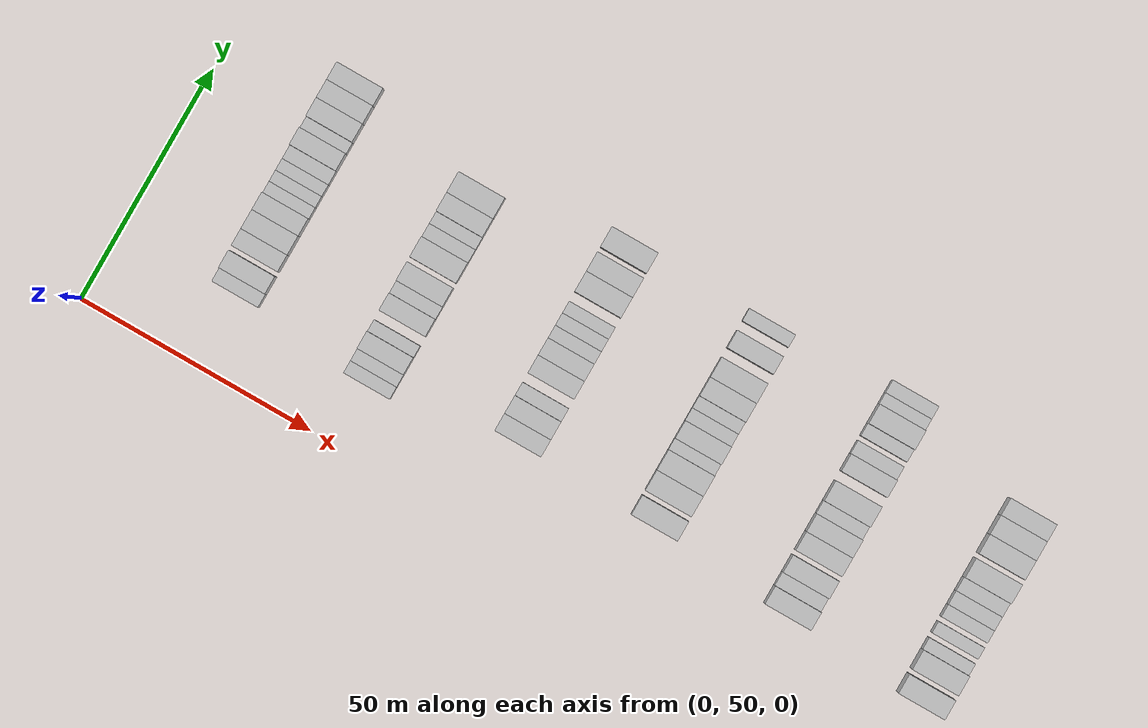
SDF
<sdf version="1.6">
 <world name="default">
  <model name="building_131">
   <static>1</static>
   <pose>25.0000 66.7313 0 0.000000 0.000000 0.000000</pose>
   <link name="link">
    <pose>0 0 3.00 0 0 0</pose>
    <collision name="collision"><geometry><box><size>10.0000 2.8714 6.0000</size></box></geometry></collision>
    <visual name="visual">
     <cast_shadows>0</cast_shadows>
     <geometry><box><size>10.0000 2.8714 6.0000</size></box></geometry>
     <material>
      <script>
       <uri>model://HANNAS_wall/materials/scripts</uri>
       <uri>model://HANNAS_wall/materials/textures</uri>
       <name>vrc/HANNAS_wall</name>
      </script>
     </material>
    </visual>
   </link>
  </model>
  <model name="building_132">
   <static>1</static>
   <pose>25.0000 70.0591 0 0.000000 0.000000 0.000000</pose>
   <link name="link">
    <pose>0 0 4.50 0 0 0</pose>
    <collision name="collision"><geometry><box><size>10.0000 3.7842 9.0000</size></box></geometry></collision>
    <visual name="visual">
     <cast_shadows>0</cast_shadows>
     <geometry><box><size>10.0000 3.7842 9.0000</size></box></geometry>
     <material>
      <script>
       <uri>model://HANNAS_wall/materials/scripts</uri>
       <uri>model://HANNAS_wall/materials/textures</uri>
       <name>vrc/HANNAS_wall</name>
      </script>
     </material>
    </visual>
   </link>
  </model>
  <model name="building_133">
   <static>1</static>
   <pose>25.0000 74.7587 0 0.000000 0.000000 0.000000</pose>
   <link name="link">
    <pose>0 0 4.50 0 0 0</pose>
    <collision name="collision"><geometry><box><size>10.0000 3.6150 9.0000</size></box></geometry></collision>
    <visual name="visual">
     <cast_shadows>0</cast_shadows>
     <geometry><box><size>10.0000 3.6150 9.0000</size></box></geometry>
     <material>
      <script>
       <uri>model://HANNAS_wall/materials/scripts</uri>
       <uri>model://HANNAS_wall/materials/textures</uri>
       <name>vrc/HANNAS_wall</name>
      </script>
     </material>
    </visual>
   </link>
  </model>
  <model name="building_134">
   <static>1</static>
   <pose>25.0000 78.6257 0 0.000000 0.000000 0.000000</pose>
   <link name="link">
    <pose>0 0 4.50 0 0 0</pose>
    <collision name="collision"><geometry><box><size>10.0000 4.1189 9.0000</size></box></geometry></collision>
    <visual name="visual">
     <cast_shadows>0</cast_shadows>
     <geometry><box><size>10.0000 4.1189 9.0000</size></box></geometry>
     <material>
      <script>
       <uri>model://HANNAS_wall/materials/scripts</uri>
       <uri>model://HANNAS_wall/materials/textures</uri>
       <name>vrc/HANNAS_wall</name>
      </script>
     </material>
    </visual>
   </link>
  </model>
  <model name="building_135">
   <static>1</static>
   <pose>25.0000 82.5671 0 0.000000 0.000000 0.000000</pose>
   <link name="link">
    <pose>0 0 4.50 0 0 0</pose>
    <collision name="collision"><geometry><box><size>10.0000 3.7638 9.0000</size></box></geometry></collision>
    <visual name="visual">
     <cast_shadows>0</cast_shadows>
     <geometry><box><size>10.0000 3.7638 9.0000</size></box></geometry>
     <material>
      <script>
       <uri>model://HANNAS_wall/materials/scripts</uri>
       <uri>model://HANNAS_wall/materials/textures</uri>
       <name>vrc/HANNAS_wall</name>
      </script>
     </material>
    </visual>
   </link>
  </model>
  <model name="building_136">
   <static>1</static>
   <pose>25.0000 85.6708 0 0.000000 0.000000 0.000000</pose>
   <link name="link">
    <pose>0 0 3.00 0 0 0</pose>
    <collision name="collision"><geometry><box><size>10.0000 2.4436 6.0000</size></box></geometry></collision>
    <visual name="visual">
     <cast_shadows>0</cast_shadows>
     <geometry><box><size>10.0000 2.4436 6.0000</size></box></geometry>
     <material>
      <script>
       <uri>model://HANNAS_wall/materials/scripts</uri>
       <uri>model://HANNAS_wall/materials/textures</uri>
       <name>vrc/HANNAS_wall</name>
      </script>
     </material>
    </visual>
   </link>
  </model>
  <model name="building_137">
   <static>1</static>
   <pose>25.0000 88.1018 0 0.000000 0.000000 0.000000</pose>
   <link name="link">
    <pose>0 0 3.00 0 0 0</pose>
    <collision name="collision"><geometry><box><size>10.0000 2.4183 6.0000</size></box></geometry></collision>
    <visual name="visual">
     <cast_shadows>0</cast_shadows>
     <geometry><box><size>10.0000 2.4183 6.0000</size></box></geometry>
     <material>
      <script>
       <uri>model://HANNAS_wall/materials/scripts</uri>
       <uri>model://HANNAS_wall/materials/textures</uri>
       <name>vrc/HANNAS_wall</name>
      </script>
     </material>
    </visual>
   </link>
  </model>
  <model name="building_138">
   <static>1</static>
   <pose>25.0000 90.5647 0 0.000000 0.000000 0.000000</pose>
   <link name="link">
    <pose>0 0 3.00 0 0 0</pose>
    <collision name="collision"><geometry><box><size>10.0000 2.5077 6.0000</size></box></geometry></collision>
    <visual name="visual">
     <cast_shadows>0</cast_shadows>
     <geometry><box><size>10.0000 2.5077 6.0000</size></box></geometry>
     <material>
      <script>
       <uri>model://HANNAS_wall/materials/scripts</uri>
       <uri>model://HANNAS_wall/materials/textures</uri>
       <name>vrc/HANNAS_wall</name>
      </script>
     </material>
    </visual>
   </link>
  </model>
  <model name="building_139">
   <static>1</static>
   <pose>25.0000 93.2722 0 0.000000 0.000000 0.000000</pose>
   <link name="link">
    <pose>0 0 3.00 0 0 0</pose>
    <collision name="collision"><geometry><box><size>10.0000 2.9072 6.0000</size></box></geometry></collision>
    <visual name="visual">
     <cast_shadows>0</cast_shadows>
     <geometry><box><size>10.0000 2.9072 6.0000</size></box></geometry>
     <material>
      <script>
       <uri>model://HANNAS_wall/materials/scripts</uri>
       <uri>model://HANNAS_wall/materials/textures</uri>
       <name>vrc/HANNAS_wall</name>
      </script>
     </material>
    </visual>
   </link>
  </model>
  <model name="building_140">
   <static>1</static>
   <pose>25.0000 96.5996 0 0.000000 0.000000 0.000000</pose>
   <link name="link">
    <pose>0 0 4.50 0 0 0</pose>
    <collision name="collision"><geometry><box><size>10.0000 3.7475 9.0000</size></box></geometry></collision>
    <visual name="visual">
     <cast_shadows>0</cast_shadows>
     <geometry><box><size>10.0000 3.7475 9.0000</size></box></geometry>
     <material>
      <script>
       <uri>model://HANNAS_wall/materials/scripts</uri>
       <uri>model://HANNAS_wall/materials/textures</uri>
       <name>vrc/HANNAS_wall</name>
      </script>
     </material>
    </visual>
   </link>
  </model>
  <model name="building_141">
   <static>1</static>
   <pose>25.0000 99.6861 0 0.000000 0.000000 0.000000</pose>
   <link name="link">
    <pose>0 0 3.00 0 0 0</pose>
    <collision name="collision"><geometry><box><size>10.0000 2.4255 6.0000</size></box></geometry></collision>
    <visual name="visual">
     <cast_shadows>0</cast_shadows>
     <geometry><box><size>10.0000 2.4255 6.0000</size></box></geometry>
     <material>
      <script>
       <uri>model://HANNAS_wall/materials/scripts</uri>
       <uri>model://HANNAS_wall/materials/textures</uri>
       <name>vrc/HANNAS_wall</name>
      </script>
     </material>
    </visual>
   </link>
  </model>
  <model name="building_142">
   <static>1</static>
   <pose>25.0000 102.8888 0 0.000000 0.000000 0.000000</pose>
   <link name="link">
    <pose>0 0 4.50 0 0 0</pose>
    <collision name="collision"><geometry><box><size>10.0000 3.9800 9.0000</size></box></geometry></collision>
    <visual name="visual">
     <cast_shadows>0</cast_shadows>
     <geometry><box><size>10.0000 3.9800 9.0000</size></box></geometry>
     <material>
      <script>
       <uri>model://HANNAS_wall/materials/scripts</uri>
       <uri>model://HANNAS_wall/materials/textures</uri>
       <name>vrc/HANNAS_wall</name>
      </script>
     </material>
    </visual>
   </link>
  </model>
  <model name="building_143">
   <static>1</static>
   <pose>25.0000 106.8172 0 0.000000 0.000000 0.000000</pose>
   <link name="link">
    <pose>0 0 4.50 0 0 0</pose>
    <collision name="collision"><geometry><box><size>10.0000 3.8768 9.0000</size></box></geometry></collision>
    <visual name="visual">
     <cast_shadows>0</cast_shadows>
     <geometry><box><size>10.0000 3.8768 9.0000</size></box></geometry>
     <material>
      <script>
       <uri>model://HANNAS_wall/materials/scripts</uri>
       <uri>model://HANNAS_wall/materials/textures</uri>
       <name>vrc/HANNAS_wall</name>
      </script>
     </material>
    </visual>
   </link>
  </model>
  <model name="building_144">
   <static>1</static>
   <pose>25.0000 110.6579 0 0.000000 0.000000 0.000000</pose>
   <link name="link">
    <pose>0 0 4.50 0 0 0</pose>
    <collision name="collision"><geometry><box><size>10.0000 3.8047 9.0000</size></box></geometry></collision>
    <visual name="visual">
     <cast_shadows>0</cast_shadows>
     <geometry><box><size>10.0000 3.8047 9.0000</size></box></geometry>
     <material>
      <script>
       <uri>model://HANNAS_wall/materials/scripts</uri>
       <uri>model://HANNAS_wall/materials/textures</uri>
       <name>vrc/HANNAS_wall</name>
      </script>
     </material>
    </visual>
   </link>
  </model>
  <model name="building_352">
   <static>1</static>
   <pose>55.0000 64.0035 0 0.000000 0.000000 0.000000</pose>
   <link name="link">
    <pose>0 0 3.00 0 0 0</pose>
    <collision name="collision"><geometry><box><size>10.0000 2.6299 6.0000</size></box></geometry></collision>
    <visual name="visual">
     <cast_shadows>0</cast_shadows>
     <geometry><box><size>10.0000 2.6299 6.0000</size></box></geometry>
     <material>
      <script>
       <uri>model://HANNAS_wall/materials/scripts</uri>
       <uri>model://HANNAS_wall/materials/textures</uri>
       <name>vrc/HANNAS_wall</name>
      </script>
     </material>
    </visual>
   </link>
  </model>
  <model name="building_353">
   <static>1</static>
   <pose>55.0000 66.6451 0 0.000000 0.000000 0.000000</pose>
   <link name="link">
    <pose>0 0 3.00 0 0 0</pose>
    <collision name="collision"><geometry><box><size>10.0000 2.6533 6.0000</size></box></geometry></collision>
    <visual name="visual">
     <cast_shadows>0</cast_shadows>
     <geometry><box><size>10.0000 2.6533 6.0000</size></box></geometry>
     <material>
      <script>
       <uri>model://HANNAS_wall/materials/scripts</uri>
       <uri>model://HANNAS_wall/materials/textures</uri>
       <name>vrc/HANNAS_wall</name>
      </script>
     </material>
    </visual>
   </link>
  </model>
  <model name="building_354">
   <static>1</static>
   <pose>55.0000 69.8385 0 0.000000 0.000000 0.000000</pose>
   <link name="link">
    <pose>0 0 4.50 0 0 0</pose>
    <collision name="collision"><geometry><box><size>10.0000 3.7335 9.0000</size></box></geometry></collision>
    <visual name="visual">
     <cast_shadows>0</cast_shadows>
     <geometry><box><size>10.0000 3.7335 9.0000</size></box></geometry>
     <material>
      <script>
       <uri>model://HANNAS_wall/materials/scripts</uri>
       <uri>model://HANNAS_wall/materials/textures</uri>
       <name>vrc/HANNAS_wall</name>
      </script>
     </material>
    </visual>
   </link>
  </model>
  <model name="building_355">
   <static>1</static>
   <pose>55.0000 72.9557 0 0.000000 0.000000 0.000000</pose>
   <link name="link">
    <pose>0 0 3.00 0 0 0</pose>
    <collision name="collision"><geometry><box><size>10.0000 2.5010 6.0000</size></box></geometry></collision>
    <visual name="visual">
     <cast_shadows>0</cast_shadows>
     <geometry><box><size>10.0000 2.5010 6.0000</size></box></geometry>
     <material>
      <script>
       <uri>model://HANNAS_wall/materials/scripts</uri>
       <uri>model://HANNAS_wall/materials/textures</uri>
       <name>vrc/HANNAS_wall</name>
      </script>
     </material>
    </visual>
   </link>
  </model>
  <model name="building_356">
   <static>1</static>
   <pose>55.0000 78.0812 0 0.000000 0.000000 0.000000</pose>
   <link name="link">
    <pose>0 0 4.50 0 0 0</pose>
    <collision name="collision"><geometry><box><size>10.0000 3.7501 9.0000</size></box></geometry></collision>
    <visual name="visual">
     <cast_shadows>0</cast_shadows>
     <geometry><box><size>10.0000 3.7501 9.0000</size></box></geometry>
     <material>
      <script>
       <uri>model://HANNAS_wall/materials/scripts</uri>
       <uri>model://HANNAS_wall/materials/textures</uri>
       <name>vrc/HANNAS_wall</name>
      </script>
     </material>
    </visual>
   </link>
  </model>
  <model name="building_357">
   <static>1</static>
   <pose>55.0000 81.2904 0 0.000000 0.000000 0.000000</pose>
   <link name="link">
    <pose>0 0 3.00 0 0 0</pose>
    <collision name="collision"><geometry><box><size>10.0000 2.6684 6.0000</size></box></geometry></collision>
    <visual name="visual">
     <cast_shadows>0</cast_shadows>
     <geometry><box><size>10.0000 2.6684 6.0000</size></box></geometry>
     <material>
      <script>
       <uri>model://HANNAS_wall/materials/scripts</uri>
       <uri>model://HANNAS_wall/materials/textures</uri>
       <name>vrc/HANNAS_wall</name>
      </script>
     </material>
    </visual>
   </link>
  </model>
  <model name="building_358">
   <static>1</static>
   <pose>55.0000 84.6705 0 0.000000 0.000000 0.000000</pose>
   <link name="link">
    <pose>0 0 4.50 0 0 0</pose>
    <collision name="collision"><geometry><box><size>10.0000 4.0917 9.0000</size></box></geometry></collision>
    <visual name="visual">
     <cast_shadows>0</cast_shadows>
     <geometry><box><size>10.0000 4.0917 9.0000</size></box></geometry>
     <material>
      <script>
       <uri>model://HANNAS_wall/materials/scripts</uri>
       <uri>model://HANNAS_wall/materials/textures</uri>
       <name>vrc/HANNAS_wall</name>
      </script>
     </material>
    </visual>
   </link>
  </model>
  <model name="building_359">
   <static>1</static>
   <pose>55.0000 89.9325 0 0.000000 0.000000 0.000000</pose>
   <link name="link">
    <pose>0 0 4.50 0 0 0</pose>
    <collision name="collision"><geometry><box><size>10.0000 4.4324 9.0000</size></box></geometry></collision>
    <visual name="visual">
     <cast_shadows>0</cast_shadows>
     <geometry><box><size>10.0000 4.4324 9.0000</size></box></geometry>
     <material>
      <script>
       <uri>model://HANNAS_wall/materials/scripts</uri>
       <uri>model://HANNAS_wall/materials/textures</uri>
       <name>vrc/HANNAS_wall</name>
      </script>
     </material>
    </visual>
   </link>
  </model>
  <model name="building_360">
   <static>1</static>
   <pose>55.0000 93.5783 0 0.000000 0.000000 0.000000</pose>
   <link name="link">
    <pose>0 0 3.00 0 0 0</pose>
    <collision name="collision"><geometry><box><size>10.0000 2.8591 6.0000</size></box></geometry></collision>
    <visual name="visual">
     <cast_shadows>0</cast_shadows>
     <geometry><box><size>10.0000 2.8591 6.0000</size></box></geometry>
     <material>
      <script>
       <uri>model://HANNAS_wall/materials/scripts</uri>
       <uri>model://HANNAS_wall/materials/textures</uri>
       <name>vrc/HANNAS_wall</name>
      </script>
     </material>
    </visual>
   </link>
  </model>
  <model name="building_361">
   <static>1</static>
   <pose>55.0000 96.3116 0 0.000000 0.000000 0.000000</pose>
   <link name="link">
    <pose>0 0 3.00 0 0 0</pose>
    <collision name="collision"><geometry><box><size>10.0000 2.6075 6.0000</size></box></geometry></collision>
    <visual name="visual">
     <cast_shadows>0</cast_shadows>
     <geometry><box><size>10.0000 2.6075 6.0000</size></box></geometry>
     <material>
      <script>
       <uri>model://HANNAS_wall/materials/scripts</uri>
       <uri>model://HANNAS_wall/materials/textures</uri>
       <name>vrc/HANNAS_wall</name>
      </script>
     </material>
    </visual>
   </link>
  </model>
  <model name="building_362">
   <static>1</static>
   <pose>55.0000 99.6271 0 0.000000 0.000000 0.000000</pose>
   <link name="link">
    <pose>0 0 4.50 0 0 0</pose>
    <collision name="collision"><geometry><box><size>10.0000 4.0236 9.0000</size></box></geometry></collision>
    <visual name="visual">
     <cast_shadows>0</cast_shadows>
     <geometry><box><size>10.0000 4.0236 9.0000</size></box></geometry>
     <material>
      <script>
       <uri>model://HANNAS_wall/materials/scripts</uri>
       <uri>model://HANNAS_wall/materials/textures</uri>
       <name>vrc/HANNAS_wall</name>
      </script>
     </material>
    </visual>
   </link>
  </model>
  <model name="building_363">
   <static>1</static>
   <pose>55.0000 103.8882 0 0.000000 0.000000 0.000000</pose>
   <link name="link">
    <pose>0 0 4.50 0 0 0</pose>
    <collision name="collision"><geometry><box><size>10.0000 4.4985 9.0000</size></box></geometry></collision>
    <visual name="visual">
     <cast_shadows>0</cast_shadows>
     <geometry><box><size>10.0000 4.4985 9.0000</size></box></geometry>
     <material>
      <script>
       <uri>model://HANNAS_wall/materials/scripts</uri>
       <uri>model://HANNAS_wall/materials/textures</uri>
       <name>vrc/HANNAS_wall</name>
      </script>
     </material>
    </visual>
   </link>
  </model>
  <model name="building_582">
   <static>1</static>
   <pose>85.0000 69.3348 0 0.000000 0.000000 0.000000</pose>
   <link name="link">
    <pose>0 0 4.50 0 0 0</pose>
    <collision name="collision"><geometry><box><size>10.0000 3.7054 9.0000</size></box></geometry></collision>
    <visual name="visual">
     <cast_shadows>0</cast_shadows>
     <geometry><box><size>10.0000 3.7054 9.0000</size></box></geometry>
     <material>
      <script>
       <uri>model://HANNAS_wall/materials/scripts</uri>
       <uri>model://HANNAS_wall/materials/textures</uri>
       <name>vrc/HANNAS_wall</name>
      </script>
     </material>
    </visual>
   </link>
  </model>
  <model name="building_583">
   <static>1</static>
   <pose>85.0000 73.1292 0 0.000000 0.000000 0.000000</pose>
   <link name="link">
    <pose>0 0 4.50 0 0 0</pose>
    <collision name="collision"><geometry><box><size>10.0000 3.8836 9.0000</size></box></geometry></collision>
    <visual name="visual">
     <cast_shadows>0</cast_shadows>
     <geometry><box><size>10.0000 3.8836 9.0000</size></box></geometry>
     <material>
      <script>
       <uri>model://HANNAS_wall/materials/scripts</uri>
       <uri>model://HANNAS_wall/materials/textures</uri>
       <name>vrc/HANNAS_wall</name>
      </script>
     </material>
    </visual>
   </link>
  </model>
  <model name="building_584">
   <static>1</static>
   <pose>85.0000 76.4975 0 0.000000 0.000000 0.000000</pose>
   <link name="link">
    <pose>0 0 3.00 0 0 0</pose>
    <collision name="collision"><geometry><box><size>10.0000 2.8530 6.0000</size></box></geometry></collision>
    <visual name="visual">
     <cast_shadows>0</cast_shadows>
     <geometry><box><size>10.0000 2.8530 6.0000</size></box></geometry>
     <material>
      <script>
       <uri>model://HANNAS_wall/materials/scripts</uri>
       <uri>model://HANNAS_wall/materials/textures</uri>
       <name>vrc/HANNAS_wall</name>
      </script>
     </material>
    </visual>
   </link>
  </model>
  <model name="building_585">
   <static>1</static>
   <pose>85.0000 81.8586 0 0.000000 0.000000 0.000000</pose>
   <link name="link">
    <pose>0 0 4.50 0 0 0</pose>
    <collision name="collision"><geometry><box><size>10.0000 3.8692 9.0000</size></box></geometry></collision>
    <visual name="visual">
     <cast_shadows>0</cast_shadows>
     <geometry><box><size>10.0000 3.8692 9.0000</size></box></geometry>
     <material>
      <script>
       <uri>model://HANNAS_wall/materials/scripts</uri>
       <uri>model://HANNAS_wall/materials/textures</uri>
       <name>vrc/HANNAS_wall</name>
      </script>
     </material>
    </visual>
   </link>
  </model>
  <model name="building_586">
   <static>1</static>
   <pose>85.0000 85.6565 0 0.000000 0.000000 0.000000</pose>
   <link name="link">
    <pose>0 0 4.50 0 0 0</pose>
    <collision name="collision"><geometry><box><size>10.0000 3.7265 9.0000</size></box></geometry></collision>
    <visual name="visual">
     <cast_shadows>0</cast_shadows>
     <geometry><box><size>10.0000 3.7265 9.0000</size></box></geometry>
     <material>
      <script>
       <uri>model://HANNAS_wall/materials/scripts</uri>
       <uri>model://HANNAS_wall/materials/textures</uri>
       <name>vrc/HANNAS_wall</name>
      </script>
     </material>
    </visual>
   </link>
  </model>
  <model name="building_587">
   <static>1</static>
   <pose>85.0000 88.8793 0 0.000000 0.000000 0.000000</pose>
   <link name="link">
    <pose>0 0 3.00 0 0 0</pose>
    <collision name="collision"><geometry><box><size>10.0000 2.7191 6.0000</size></box></geometry></collision>
    <visual name="visual">
     <cast_shadows>0</cast_shadows>
     <geometry><box><size>10.0000 2.7191 6.0000</size></box></geometry>
     <material>
      <script>
       <uri>model://HANNAS_wall/materials/scripts</uri>
       <uri>model://HANNAS_wall/materials/textures</uri>
       <name>vrc/HANNAS_wall</name>
      </script>
     </material>
    </visual>
   </link>
  </model>
  <model name="building_588">
   <static>1</static>
   <pose>85.0000 91.5749 0 0.000000 0.000000 0.000000</pose>
   <link name="link">
    <pose>0 0 3.00 0 0 0</pose>
    <collision name="collision"><geometry><box><size>10.0000 2.6723 6.0000</size></box></geometry></collision>
    <visual name="visual">
     <cast_shadows>0</cast_shadows>
     <geometry><box><size>10.0000 2.6723 6.0000</size></box></geometry>
     <material>
      <script>
       <uri>model://HANNAS_wall/materials/scripts</uri>
       <uri>model://HANNAS_wall/materials/textures</uri>
       <name>vrc/HANNAS_wall</name>
      </script>
     </material>
    </visual>
   </link>
  </model>
  <model name="building_589">
   <static>1</static>
   <pose>85.0000 94.1861 0 0.000000 0.000000 0.000000</pose>
   <link name="link">
    <pose>0 0 3.00 0 0 0</pose>
    <collision name="collision"><geometry><box><size>10.0000 2.5501 6.0000</size></box></geometry></collision>
    <visual name="visual">
     <cast_shadows>0</cast_shadows>
     <geometry><box><size>10.0000 2.5501 6.0000</size></box></geometry>
     <material>
      <script>
       <uri>model://HANNAS_wall/materials/scripts</uri>
       <uri>model://HANNAS_wall/materials/textures</uri>
       <name>vrc/HANNAS_wall</name>
      </script>
     </material>
    </visual>
   </link>
  </model>
  <model name="building_590">
   <static>1</static>
   <pose>85.0000 99.6773 0 0.000000 0.000000 0.000000</pose>
   <link name="link">
    <pose>0 0 4.50 0 0 0</pose>
    <collision name="collision"><geometry><box><size>10.0000 4.4322 9.0000</size></box></geometry></collision>
    <visual name="visual">
     <cast_shadows>0</cast_shadows>
     <geometry><box><size>10.0000 4.4322 9.0000</size></box></geometry>
     <material>
      <script>
       <uri>model://HANNAS_wall/materials/scripts</uri>
       <uri>model://HANNAS_wall/materials/textures</uri>
       <name>vrc/HANNAS_wall</name>
      </script>
     </material>
    </visual>
   </link>
  </model>
  <model name="building_591">
   <static>1</static>
   <pose>85.0000 103.9904 0 0.000000 0.000000 0.000000</pose>
   <link name="link">
    <pose>0 0 4.50 0 0 0</pose>
    <collision name="collision"><geometry><box><size>10.0000 4.1940 9.0000</size></box></geometry></collision>
    <visual name="visual">
     <cast_shadows>0</cast_shadows>
     <geometry><box><size>10.0000 4.1940 9.0000</size></box></geometry>
     <material>
      <script>
       <uri>model://HANNAS_wall/materials/scripts</uri>
       <uri>model://HANNAS_wall/materials/textures</uri>
       <name>vrc/HANNAS_wall</name>
      </script>
     </material>
    </visual>
   </link>
  </model>
  <model name="building_592">
   <static>1</static>
   <pose>85.0000 109.3140 0 0.000000 0.000000 0.000000</pose>
   <link name="link">
    <pose>0 0 4.50 0 0 0</pose>
    <collision name="collision"><geometry><box><size>10.0000 4.4531 9.0000</size></box></geometry></collision>
    <visual name="visual">
     <cast_shadows>0</cast_shadows>
     <geometry><box><size>10.0000 4.4531 9.0000</size></box></geometry>
     <material>
      <script>
       <uri>model://HANNAS_wall/materials/scripts</uri>
       <uri>model://HANNAS_wall/materials/textures</uri>
       <name>vrc/HANNAS_wall</name>
      </script>
     </material>
    </visual>
   </link>
  </model>
  <model name="building_819">
   <static>1</static>
   <pose>115.0000 68.6830 0 0.000000 0.000000 0.000000</pose>
   <link name="link">
    <pose>0 0 4.50 0 0 0</pose>
    <collision name="collision"><geometry><box><size>10.0000 4.2298 9.0000</size></box></geometry></collision>
    <visual name="visual">
     <cast_shadows>0</cast_shadows>
     <geometry><box><size>10.0000 4.2298 9.0000</size></box></geometry>
     <material>
      <script>
       <uri>model://HANNAS_wall/materials/scripts</uri>
       <uri>model://HANNAS_wall/materials/textures</uri>
       <name>vrc/HANNAS_wall</name>
      </script>
     </material>
    </visual>
   </link>
  </model>
  <model name="building_820">
   <static>1</static>
   <pose>115.0000 74.0087 0 0.000000 0.000000 0.000000</pose>
   <link name="link">
    <pose>0 0 4.50 0 0 0</pose>
    <collision name="collision"><geometry><box><size>10.0000 4.4217 9.0000</size></box></geometry></collision>
    <visual name="visual">
     <cast_shadows>0</cast_shadows>
     <geometry><box><size>10.0000 4.4217 9.0000</size></box></geometry>
     <material>
      <script>
       <uri>model://HANNAS_wall/materials/scripts</uri>
       <uri>model://HANNAS_wall/materials/textures</uri>
       <name>vrc/HANNAS_wall</name>
      </script>
     </material>
    </visual>
   </link>
  </model>
  <model name="building_821">
   <static>1</static>
   <pose>115.0000 78.4195 0 0.000000 0.000000 0.000000</pose>
   <link name="link">
    <pose>0 0 4.50 0 0 0</pose>
    <collision name="collision"><geometry><box><size>10.0000 4.3999 9.0000</size></box></geometry></collision>
    <visual name="visual">
     <cast_shadows>0</cast_shadows>
     <geometry><box><size>10.0000 4.3999 9.0000</size></box></geometry>
     <material>
      <script>
       <uri>model://HANNAS_wall/materials/scripts</uri>
       <uri>model://HANNAS_wall/materials/textures</uri>
       <name>vrc/HANNAS_wall</name>
      </script>
     </material>
    </visual>
   </link>
  </model>
  <model name="building_822">
   <static>1</static>
   <pose>115.0000 81.8378 0 0.000000 0.000000 0.000000</pose>
   <link name="link">
    <pose>0 0 3.00 0 0 0</pose>
    <collision name="collision"><geometry><box><size>10.0000 2.4367 6.0000</size></box></geometry></collision>
    <visual name="visual">
     <cast_shadows>0</cast_shadows>
     <geometry><box><size>10.0000 2.4367 6.0000</size></box></geometry>
     <material>
      <script>
       <uri>model://HANNAS_wall/materials/scripts</uri>
       <uri>model://HANNAS_wall/materials/textures</uri>
       <name>vrc/HANNAS_wall</name>
      </script>
     </material>
    </visual>
   </link>
  </model>
  <model name="building_823">
   <static>1</static>
   <pose>115.0000 84.9774 0 0.000000 0.000000 0.000000</pose>
   <link name="link">
    <pose>0 0 4.50 0 0 0</pose>
    <collision name="collision"><geometry><box><size>10.0000 3.8424 9.0000</size></box></geometry></collision>
    <visual name="visual">
     <cast_shadows>0</cast_shadows>
     <geometry><box><size>10.0000 3.8424 9.0000</size></box></geometry>
     <material>
      <script>
       <uri>model://HANNAS_wall/materials/scripts</uri>
       <uri>model://HANNAS_wall/materials/textures</uri>
       <name>vrc/HANNAS_wall</name>
      </script>
     </material>
    </visual>
   </link>
  </model>
  <model name="building_824">
   <static>1</static>
   <pose>115.0000 88.2580 0 0.000000 0.000000 0.000000</pose>
   <link name="link">
    <pose>0 0 3.00 0 0 0</pose>
    <collision name="collision"><geometry><box><size>10.0000 2.7189 6.0000</size></box></geometry></collision>
    <visual name="visual">
     <cast_shadows>0</cast_shadows>
     <geometry><box><size>10.0000 2.7189 6.0000</size></box></geometry>
     <material>
      <script>
       <uri>model://HANNAS_wall/materials/scripts</uri>
       <uri>model://HANNAS_wall/materials/textures</uri>
       <name>vrc/HANNAS_wall</name>
      </script>
     </material>
    </visual>
   </link>
  </model>
  <model name="building_825">
   <static>1</static>
   <pose>115.0000 90.9194 0 0.000000 0.000000 0.000000</pose>
   <link name="link">
    <pose>0 0 3.00 0 0 0</pose>
    <collision name="collision"><geometry><box><size>10.0000 2.6038 6.0000</size></box></geometry></collision>
    <visual name="visual">
     <cast_shadows>0</cast_shadows>
     <geometry><box><size>10.0000 2.6038 6.0000</size></box></geometry>
     <material>
      <script>
       <uri>model://HANNAS_wall/materials/scripts</uri>
       <uri>model://HANNAS_wall/materials/textures</uri>
       <name>vrc/HANNAS_wall</name>
      </script>
     </material>
    </visual>
   </link>
  </model>
  <model name="building_826">
   <static>1</static>
   <pose>115.0000 94.2460 0 0.000000 0.000000 0.000000</pose>
   <link name="link">
    <pose>0 0 4.50 0 0 0</pose>
    <collision name="collision"><geometry><box><size>10.0000 4.0493 9.0000</size></box></geometry></collision>
    <visual name="visual">
     <cast_shadows>0</cast_shadows>
     <geometry><box><size>10.0000 4.0493 9.0000</size></box></geometry>
     <material>
      <script>
       <uri>model://HANNAS_wall/materials/scripts</uri>
       <uri>model://HANNAS_wall/materials/textures</uri>
       <name>vrc/HANNAS_wall</name>
      </script>
     </material>
    </visual>
   </link>
  </model>
  <model name="building_827">
   <static>1</static>
   <pose>115.0000 98.4206 0 0.000000 0.000000 0.000000</pose>
   <link name="link">
    <pose>0 0 4.50 0 0 0</pose>
    <collision name="collision"><geometry><box><size>10.0000 4.3000 9.0000</size></box></geometry></collision>
    <visual name="visual">
     <cast_shadows>0</cast_shadows>
     <geometry><box><size>10.0000 4.3000 9.0000</size></box></geometry>
     <material>
      <script>
       <uri>model://HANNAS_wall/materials/scripts</uri>
       <uri>model://HANNAS_wall/materials/textures</uri>
       <name>vrc/HANNAS_wall</name>
      </script>
     </material>
    </visual>
   </link>
  </model>
  <model name="building_828">
   <static>1</static>
   <pose>115.0000 104.4827 0 0.000000 0.000000 0.000000</pose>
   <link name="link">
    <pose>0 0 4.50 0 0 0</pose>
    <collision name="collision"><geometry><box><size>10.0000 3.8243 9.0000</size></box></geometry></collision>
    <visual name="visual">
     <cast_shadows>0</cast_shadows>
     <geometry><box><size>10.0000 3.8243 9.0000</size></box></geometry>
     <material>
      <script>
       <uri>model://HANNAS_wall/materials/scripts</uri>
       <uri>model://HANNAS_wall/materials/textures</uri>
       <name>vrc/HANNAS_wall</name>
      </script>
     </material>
    </visual>
   </link>
  </model>
  <model name="building_829">
   <static>1</static>
   <pose>115.0000 109.7558 0 0.000000 0.000000 0.000000</pose>
   <link name="link">
    <pose>0 0 3.00 0 0 0</pose>
    <collision name="collision"><geometry><box><size>10.0000 2.7219 6.0000</size></box></geometry></collision>
    <visual name="visual">
     <cast_shadows>0</cast_shadows>
     <geometry><box><size>10.0000 2.7219 6.0000</size></box></geometry>
     <material>
      <script>
       <uri>model://HANNAS_wall/materials/scripts</uri>
       <uri>model://HANNAS_wall/materials/textures</uri>
       <name>vrc/HANNAS_wall</name>
      </script>
     </material>
    </visual>
   </link>
  </model>
  <model name="building_1054">
   <static>1</static>
   <pose>145.0000 66.4934 0 0.000000 0.000000 0.000000</pose>
   <link name="link">
    <pose>0 0 4.50 0 0 0</pose>
    <collision name="collision"><geometry><box><size>10.0000 3.8959 9.0000</size></box></geometry></collision>
    <visual name="visual">
     <cast_shadows>0</cast_shadows>
     <geometry><box><size>10.0000 3.8959 9.0000</size></box></geometry>
     <material>
      <script>
       <uri>model://HANNAS_wall/materials/scripts</uri>
       <uri>model://HANNAS_wall/materials/textures</uri>
       <name>vrc/HANNAS_wall</name>
      </script>
     </material>
    </visual>
   </link>
  </model>
  <model name="building_1055">
   <static>1</static>
   <pose>145.0000 69.9054 0 0.000000 0.000000 0.000000</pose>
   <link name="link">
    <pose>0 0 3.00 0 0 0</pose>
    <collision name="collision"><geometry><box><size>10.0000 2.9281 6.0000</size></box></geometry></collision>
    <visual name="visual">
     <cast_shadows>0</cast_shadows>
     <geometry><box><size>10.0000 2.9281 6.0000</size></box></geometry>
     <material>
      <script>
       <uri>model://HANNAS_wall/materials/scripts</uri>
       <uri>model://HANNAS_wall/materials/textures</uri>
       <name>vrc/HANNAS_wall</name>
      </script>
     </material>
    </visual>
   </link>
  </model>
  <model name="building_1056">
   <static>1</static>
   <pose>145.0000 73.2561 0 0.000000 0.000000 0.000000</pose>
   <link name="link">
    <pose>0 0 4.50 0 0 0</pose>
    <collision name="collision"><geometry><box><size>10.0000 3.7733 9.0000</size></box></geometry></collision>
    <visual name="visual">
     <cast_shadows>0</cast_shadows>
     <geometry><box><size>10.0000 3.7733 9.0000</size></box></geometry>
     <material>
      <script>
       <uri>model://HANNAS_wall/materials/scripts</uri>
       <uri>model://HANNAS_wall/materials/textures</uri>
       <name>vrc/HANNAS_wall</name>
      </script>
     </material>
    </visual>
   </link>
  </model>
  <model name="building_1057">
   <static>1</static>
   <pose>145.0000 78.1586 0 0.000000 0.000000 0.000000</pose>
   <link name="link">
    <pose>0 0 4.50 0 0 0</pose>
    <collision name="collision"><geometry><box><size>10.0000 4.0318 9.0000</size></box></geometry></collision>
    <visual name="visual">
     <cast_shadows>0</cast_shadows>
     <geometry><box><size>10.0000 4.0318 9.0000</size></box></geometry>
     <material>
      <script>
       <uri>model://HANNAS_wall/materials/scripts</uri>
       <uri>model://HANNAS_wall/materials/textures</uri>
       <name>vrc/HANNAS_wall</name>
      </script>
     </material>
    </visual>
   </link>
  </model>
  <model name="building_1058">
   <static>1</static>
   <pose>145.0000 82.1070 0 0.000000 0.000000 0.000000</pose>
   <link name="link">
    <pose>0 0 4.50 0 0 0</pose>
    <collision name="collision"><geometry><box><size>10.0000 3.8651 9.0000</size></box></geometry></collision>
    <visual name="visual">
     <cast_shadows>0</cast_shadows>
     <geometry><box><size>10.0000 3.8651 9.0000</size></box></geometry>
     <material>
      <script>
       <uri>model://HANNAS_wall/materials/scripts</uri>
       <uri>model://HANNAS_wall/materials/textures</uri>
       <name>vrc/HANNAS_wall</name>
      </script>
     </material>
    </visual>
   </link>
  </model>
  <model name="building_1059">
   <static>1</static>
   <pose>145.0000 85.4253 0 0.000000 0.000000 0.000000</pose>
   <link name="link">
    <pose>0 0 3.00 0 0 0</pose>
    <collision name="collision"><geometry><box><size>10.0000 2.7716 6.0000</size></box></geometry></collision>
    <visual name="visual">
     <cast_shadows>0</cast_shadows>
     <geometry><box><size>10.0000 2.7716 6.0000</size></box></geometry>
     <material>
      <script>
       <uri>model://HANNAS_wall/materials/scripts</uri>
       <uri>model://HANNAS_wall/materials/textures</uri>
       <name>vrc/HANNAS_wall</name>
      </script>
     </material>
    </visual>
   </link>
  </model>
  <model name="building_1060">
   <static>1</static>
   <pose>145.0000 89.0087 0 0.000000 0.000000 0.000000</pose>
   <link name="link">
    <pose>0 0 4.50 0 0 0</pose>
    <collision name="collision"><geometry><box><size>10.0000 4.3951 9.0000</size></box></geometry></collision>
    <visual name="visual">
     <cast_shadows>0</cast_shadows>
     <geometry><box><size>10.0000 4.3951 9.0000</size></box></geometry>
     <material>
      <script>
       <uri>model://HANNAS_wall/materials/scripts</uri>
       <uri>model://HANNAS_wall/materials/textures</uri>
       <name>vrc/HANNAS_wall</name>
      </script>
     </material>
    </visual>
   </link>
  </model>
  <model name="building_1061">
   <static>1</static>
   <pose>145.0000 95.0853 0 0.000000 0.000000 0.000000</pose>
   <link name="link">
    <pose>0 0 4.50 0 0 0</pose>
    <collision name="collision"><geometry><box><size>10.0000 3.7582 9.0000</size></box></geometry></collision>
    <visual name="visual">
     <cast_shadows>0</cast_shadows>
     <geometry><box><size>10.0000 3.7582 9.0000</size></box></geometry>
     <material>
      <script>
       <uri>model://HANNAS_wall/materials/scripts</uri>
       <uri>model://HANNAS_wall/materials/textures</uri>
       <name>vrc/HANNAS_wall</name>
      </script>
     </material>
    </visual>
   </link>
  </model>
  <model name="building_1062">
   <static>1</static>
   <pose>145.0000 98.3922 0 0.000000 0.000000 0.000000</pose>
   <link name="link">
    <pose>0 0 3.00 0 0 0</pose>
    <collision name="collision"><geometry><box><size>10.0000 2.8556 6.0000</size></box></geometry></collision>
    <visual name="visual">
     <cast_shadows>0</cast_shadows>
     <geometry><box><size>10.0000 2.8556 6.0000</size></box></geometry>
     <material>
      <script>
       <uri>model://HANNAS_wall/materials/scripts</uri>
       <uri>model://HANNAS_wall/materials/textures</uri>
       <name>vrc/HANNAS_wall</name>
      </script>
     </material>
    </visual>
   </link>
  </model>
  <model name="building_1063">
   <static>1</static>
   <pose>145.0000 102.1687 0 0.000000 0.000000 0.000000</pose>
   <link name="link">
    <pose>0 0 3.00 0 0 0</pose>
    <collision name="collision"><geometry><box><size>10.0000 2.6975 6.0000</size></box></geometry></collision>
    <visual name="visual">
     <cast_shadows>0</cast_shadows>
     <geometry><box><size>10.0000 2.6975 6.0000</size></box></geometry>
     <material>
      <script>
       <uri>model://HANNAS_wall/materials/scripts</uri>
       <uri>model://HANNAS_wall/materials/textures</uri>
       <name>vrc/HANNAS_wall</name>
      </script>
     </material>
    </visual>
   </link>
  </model>
  <model name="building_1064">
   <static>1</static>
   <pose>145.0000 105.6071 0 0.000000 0.000000 0.000000</pose>
   <link name="link">
    <pose>0 0 4.50 0 0 0</pose>
    <collision name="collision"><geometry><box><size>10.0000 4.1793 9.0000</size></box></geometry></collision>
    <visual name="visual">
     <cast_shadows>0</cast_shadows>
     <geometry><box><size>10.0000 4.1793 9.0000</size></box></geometry>
     <material>
      <script>
       <uri>model://HANNAS_wall/materials/scripts</uri>
       <uri>model://HANNAS_wall/materials/textures</uri>
       <name>vrc/HANNAS_wall</name>
      </script>
     </material>
    </visual>
   </link>
  </model>
  <model name="building_1065">
   <static>1</static>
   <pose>145.0000 108.9145 0 0.000000 0.000000 0.000000</pose>
   <link name="link">
    <pose>0 0 3.00 0 0 0</pose>
    <collision name="collision"><geometry><box><size>10.0000 2.4355 6.0000</size></box></geometry></collision>
    <visual name="visual">
     <cast_shadows>0</cast_shadows>
     <geometry><box><size>10.0000 2.4355 6.0000</size></box></geometry>
     <material>
      <script>
       <uri>model://HANNAS_wall/materials/scripts</uri>
       <uri>model://HANNAS_wall/materials/textures</uri>
       <name>vrc/HANNAS_wall</name>
      </script>
     </material>
    </visual>
   </link>
  </model>
  <model name="building_1066">
   <static>1</static>
   <pose>145.0000 111.5119 0 0.000000 0.000000 0.000000</pose>
   <link name="link">
    <pose>0 0 3.00 0 0 0</pose>
    <collision name="collision"><geometry><box><size>10.0000 2.7592 6.0000</size></box></geometry></collision>
    <visual name="visual">
     <cast_shadows>0</cast_shadows>
     <geometry><box><size>10.0000 2.7592 6.0000</size></box></geometry>
     <material>
      <script>
       <uri>model://HANNAS_wall/materials/scripts</uri>
       <uri>model://HANNAS_wall/materials/textures</uri>
       <name>vrc/HANNAS_wall</name>
      </script>
     </material>
    </visual>
   </link>
  </model>
  <model name="building_1280">
   <static>1</static>
   <pose>175.0000 64.5877 0 0.000000 0.000000 0.000000</pose>
   <link name="link">
    <pose>0 0 4.50 0 0 0</pose>
    <collision name="collision"><geometry><box><size>10.0000 4.1638 9.0000</size></box></geometry></collision>
    <visual name="visual">
     <cast_shadows>0</cast_shadows>
     <geometry><box><size>10.0000 4.1638 9.0000</size></box></geometry>
     <material>
      <script>
       <uri>model://HANNAS_wall/materials/scripts</uri>
       <uri>model://HANNAS_wall/materials/textures</uri>
       <name>vrc/HANNAS_wall</name>
      </script>
     </material>
    </visual>
   </link>
  </model>
  <model name="building_1281">
   <static>1</static>
   <pose>175.0000 69.7889 0 0.000000 0.000000 0.000000</pose>
   <link name="link">
    <pose>0 0 4.50 0 0 0</pose>
    <collision name="collision"><geometry><box><size>10.0000 4.2385 9.0000</size></box></geometry></collision>
    <visual name="visual">
     <cast_shadows>0</cast_shadows>
     <geometry><box><size>10.0000 4.2385 9.0000</size></box></geometry>
     <material>
      <script>
       <uri>model://HANNAS_wall/materials/scripts</uri>
       <uri>model://HANNAS_wall/materials/textures</uri>
       <name>vrc/HANNAS_wall</name>
      </script>
     </material>
    </visual>
   </link>
  </model>
  <model name="building_1282">
   <static>1</static>
   <pose>175.0000 73.1674 0 0.000000 0.000000 0.000000</pose>
   <link name="link">
    <pose>0 0 3.00 0 0 0</pose>
    <collision name="collision"><geometry><box><size>10.0000 2.5186 6.0000</size></box></geometry></collision>
    <visual name="visual">
     <cast_shadows>0</cast_shadows>
     <geometry><box><size>10.0000 2.5186 6.0000</size></box></geometry>
     <material>
      <script>
       <uri>model://HANNAS_wall/materials/scripts</uri>
       <uri>model://HANNAS_wall/materials/textures</uri>
       <name>vrc/HANNAS_wall</name>
      </script>
     </material>
    </visual>
   </link>
  </model>
  <model name="building_1283">
   <static>1</static>
   <pose>175.0000 76.6713 0 0.000000 0.000000 0.000000</pose>
   <link name="link">
    <pose>0 0 3.00 0 0 0</pose>
    <collision name="collision"><geometry><box><size>10.0000 2.4890 6.0000</size></box></geometry></collision>
    <visual name="visual">
     <cast_shadows>0</cast_shadows>
     <geometry><box><size>10.0000 2.4890 6.0000</size></box></geometry>
     <material>
      <script>
       <uri>model://HANNAS_wall/materials/scripts</uri>
       <uri>model://HANNAS_wall/materials/textures</uri>
       <name>vrc/HANNAS_wall</name>
      </script>
     </material>
    </visual>
   </link>
  </model>
  <model name="building_1284">
   <static>1</static>
   <pose>175.0000 80.2462 0 0.000000 0.000000 0.000000</pose>
   <link name="link">
    <pose>0 0 3.00 0 0 0</pose>
    <collision name="collision"><geometry><box><size>10.0000 2.6608 6.0000</size></box></geometry></collision>
    <visual name="visual">
     <cast_shadows>0</cast_shadows>
     <geometry><box><size>10.0000 2.6608 6.0000</size></box></geometry>
     <material>
      <script>
       <uri>model://HANNAS_wall/materials/scripts</uri>
       <uri>model://HANNAS_wall/materials/textures</uri>
       <name>vrc/HANNAS_wall</name>
      </script>
     </material>
    </visual>
   </link>
  </model>
  <model name="building_1285">
   <static>1</static>
   <pose>175.0000 83.0582 0 0.000000 0.000000 0.000000</pose>
   <link name="link">
    <pose>0 0 3.00 0 0 0</pose>
    <collision name="collision"><geometry><box><size>10.0000 2.9632 6.0000</size></box></geometry></collision>
    <visual name="visual">
     <cast_shadows>0</cast_shadows>
     <geometry><box><size>10.0000 2.9632 6.0000</size></box></geometry>
     <material>
      <script>
       <uri>model://HANNAS_wall/materials/scripts</uri>
       <uri>model://HANNAS_wall/materials/textures</uri>
       <name>vrc/HANNAS_wall</name>
      </script>
     </material>
    </visual>
   </link>
  </model>
  <model name="building_1286">
   <static>1</static>
   <pose>175.0000 86.0222 0 0.000000 0.000000 0.000000</pose>
   <link name="link">
    <pose>0 0 3.00 0 0 0</pose>
    <collision name="collision"><geometry><box><size>10.0000 2.9649 6.0000</size></box></geometry></collision>
    <visual name="visual">
     <cast_shadows>0</cast_shadows>
     <geometry><box><size>10.0000 2.9649 6.0000</size></box></geometry>
     <material>
      <script>
       <uri>model://HANNAS_wall/materials/scripts</uri>
       <uri>model://HANNAS_wall/materials/textures</uri>
       <name>vrc/HANNAS_wall</name>
      </script>
     </material>
    </visual>
   </link>
  </model>
  <model name="building_1287">
   <static>1</static>
   <pose>175.0000 89.5936 0 0.000000 0.000000 0.000000</pose>
   <link name="link">
    <pose>0 0 4.50 0 0 0</pose>
    <collision name="collision"><geometry><box><size>10.0000 4.1779 9.0000</size></box></geometry></collision>
    <visual name="visual">
     <cast_shadows>0</cast_shadows>
     <geometry><box><size>10.0000 4.1779 9.0000</size></box></geometry>
     <material>
      <script>
       <uri>model://HANNAS_wall/materials/scripts</uri>
       <uri>model://HANNAS_wall/materials/textures</uri>
       <name>vrc/HANNAS_wall</name>
      </script>
     </material>
    </visual>
   </link>
  </model>
  <model name="building_1288">
   <static>1</static>
   <pose>175.0000 94.7706 0 0.000000 0.000000 0.000000</pose>
   <link name="link">
    <pose>0 0 4.50 0 0 0</pose>
    <collision name="collision"><geometry><box><size>10.0000 4.1762 9.0000</size></box></geometry></collision>
    <visual name="visual">
     <cast_shadows>0</cast_shadows>
     <geometry><box><size>10.0000 4.1762 9.0000</size></box></geometry>
     <material>
      <script>
       <uri>model://HANNAS_wall/materials/scripts</uri>
       <uri>model://HANNAS_wall/materials/textures</uri>
       <name>vrc/HANNAS_wall</name>
      </script>
     </material>
    </visual>
   </link>
  </model>
  <model name="building_1289">
   <static>1</static>
   <pose>175.0000 98.9179 0 0.000000 0.000000 0.000000</pose>
   <link name="link">
    <pose>0 0 4.50 0 0 0</pose>
    <collision name="collision"><geometry><box><size>10.0000 4.1183 9.0000</size></box></geometry></collision>
    <visual name="visual">
     <cast_shadows>0</cast_shadows>
     <geometry><box><size>10.0000 4.1183 9.0000</size></box></geometry>
     <material>
      <script>
       <uri>model://HANNAS_wall/materials/scripts</uri>
       <uri>model://HANNAS_wall/materials/textures</uri>
       <name>vrc/HANNAS_wall</name>
      </script>
     </material>
    </visual>
   </link>
  </model>
  <model name="building_1290">
   <static>1</static>
   <pose>175.0000 102.8168 0 0.000000 0.000000 0.000000</pose>
   <link name="link">
    <pose>0 0 4.50 0 0 0</pose>
    <collision name="collision"><geometry><box><size>10.0000 3.6796 9.0000</size></box></geometry></collision>
    <visual name="visual">
     <cast_shadows>0</cast_shadows>
     <geometry><box><size>10.0000 3.6796 9.0000</size></box></geometry>
     <material>
      <script>
       <uri>model://HANNAS_wall/materials/scripts</uri>
       <uri>model://HANNAS_wall/materials/textures</uri>
       <name>vrc/HANNAS_wall</name>
      </script>
     </material>
    </visual>
   </link>
  </model>
 </world>
</sdf>
